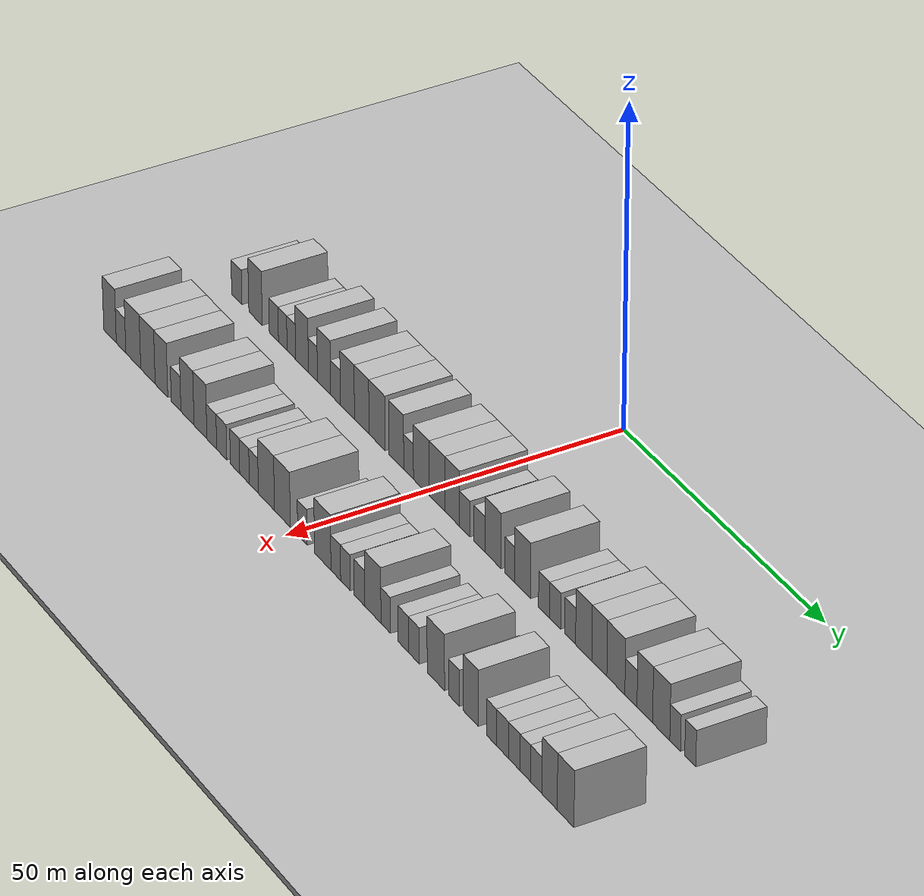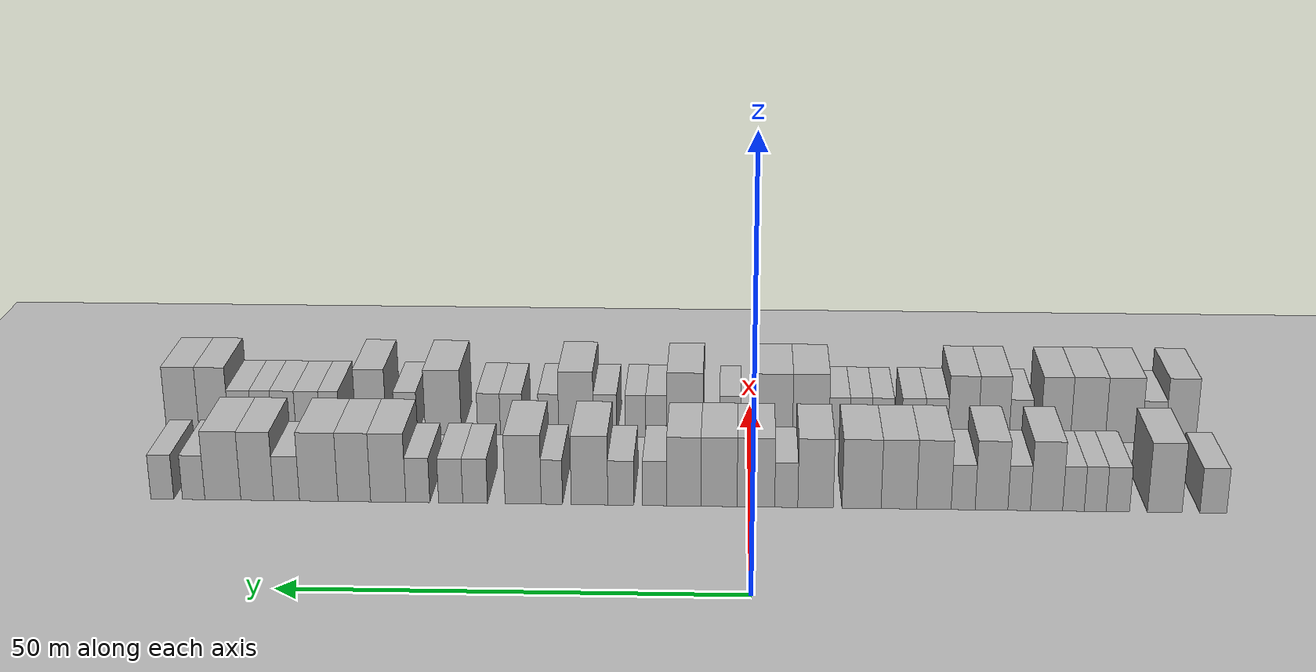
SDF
<sdf version="1.6">
 <world name="default">
  <include><name>ground_plane_1</name><uri>model://HANNAS_ground_plane</uri></include>
  <include>
   <name>ground_plane_2</name>
   <uri>model://HANNAS_ground_plane</uri>
   <pose>100 0 0  0 0 0</pose>
  </include>
  <model name="building_37">
   <static>1</static>
   <pose>25.0000 -52.0480 0 0.000000 0.000000 0.000000</pose>
   <link name="link">
    <pose>0 0 3.00 0 0 0</pose>
    <collision name="collision"><geometry><box><size>10.0000 2.9936 6.0000</size></box></geometry></collision>
    <visual name="visual">
     <cast_shadows>0</cast_shadows>
     <geometry><box><size>10.0000 2.9936 6.0000</size></box></geometry>
     <material>
      <script>
       <uri>model://HANNAS_wall/materials/scripts</uri>
       <uri>model://HANNAS_wall/materials/textures</uri>
       <name>vrc/HANNAS_wall</name>
      </script>
     </material>
    </visual>
   </link>
  </model>
  <model name="building_38">
   <static>1</static>
   <pose>25.0000 -46.6086 0 0.000000 0.000000 0.000000</pose>
   <link name="link">
    <pose>0 0 4.50 0 0 0</pose>
    <collision name="collision"><geometry><box><size>10.0000 3.8852 9.0000</size></box></geometry></collision>
    <visual name="visual">
     <cast_shadows>0</cast_shadows>
     <geometry><box><size>10.0000 3.8852 9.0000</size></box></geometry>
     <material>
      <script>
       <uri>model://HANNAS_wall/materials/scripts</uri>
       <uri>model://HANNAS_wall/materials/textures</uri>
       <name>vrc/HANNAS_wall</name>
      </script>
     </material>
    </visual>
   </link>
  </model>
  <model name="building_39">
   <static>1</static>
   <pose>25.0000 -41.3513 0 0.000000 0.000000 0.000000</pose>
   <link name="link">
    <pose>0 0 3.00 0 0 0</pose>
    <collision name="collision"><geometry><box><size>10.0000 2.6293 6.0000</size></box></geometry></collision>
    <visual name="visual">
     <cast_shadows>0</cast_shadows>
     <geometry><box><size>10.0000 2.6293 6.0000</size></box></geometry>
     <material>
      <script>
       <uri>model://HANNAS_wall/materials/scripts</uri>
       <uri>model://HANNAS_wall/materials/textures</uri>
       <name>vrc/HANNAS_wall</name>
      </script>
     </material>
    </visual>
   </link>
  </model>
  <model name="building_40">
   <static>1</static>
   <pose>25.0000 -38.8066 0 0.000000 0.000000 0.000000</pose>
   <link name="link">
    <pose>0 0 3.00 0 0 0</pose>
    <collision name="collision"><geometry><box><size>10.0000 2.4602 6.0000</size></box></geometry></collision>
    <visual name="visual">
     <cast_shadows>0</cast_shadows>
     <geometry><box><size>10.0000 2.4602 6.0000</size></box></geometry>
     <material>
      <script>
       <uri>model://HANNAS_wall/materials/scripts</uri>
       <uri>model://HANNAS_wall/materials/textures</uri>
       <name>vrc/HANNAS_wall</name>
      </script>
     </material>
    </visual>
   </link>
  </model>
  <model name="building_41">
   <static>1</static>
   <pose>25.0000 -36.3595 0 0.000000 0.000000 0.000000</pose>
   <link name="link">
    <pose>0 0 3.00 0 0 0</pose>
    <collision name="collision"><geometry><box><size>10.0000 2.4339 6.0000</size></box></geometry></collision>
    <visual name="visual">
     <cast_shadows>0</cast_shadows>
     <geometry><box><size>10.0000 2.4339 6.0000</size></box></geometry>
     <material>
      <script>
       <uri>model://HANNAS_wall/materials/scripts</uri>
       <uri>model://HANNAS_wall/materials/textures</uri>
       <name>vrc/HANNAS_wall</name>
      </script>
     </material>
    </visual>
   </link>
  </model>
  <model name="building_42">
   <static>1</static>
   <pose>25.0000 -33.3361 0 0.000000 0.000000 0.000000</pose>
   <link name="link">
    <pose>0 0 4.50 0 0 0</pose>
    <collision name="collision"><geometry><box><size>10.0000 3.6129 9.0000</size></box></geometry></collision>
    <visual name="visual">
     <cast_shadows>0</cast_shadows>
     <geometry><box><size>10.0000 3.6129 9.0000</size></box></geometry>
     <material>
      <script>
       <uri>model://HANNAS_wall/materials/scripts</uri>
       <uri>model://HANNAS_wall/materials/textures</uri>
       <name>vrc/HANNAS_wall</name>
      </script>
     </material>
    </visual>
   </link>
  </model>
  <model name="building_43">
   <static>1</static>
   <pose>25.0000 -30.2593 0 0.000000 0.000000 0.000000</pose>
   <link name="link">
    <pose>0 0 3.00 0 0 0</pose>
    <collision name="collision"><geometry><box><size>10.0000 2.5407 6.0000</size></box></geometry></collision>
    <visual name="visual">
     <cast_shadows>0</cast_shadows>
     <geometry><box><size>10.0000 2.5407 6.0000</size></box></geometry>
     <material>
      <script>
       <uri>model://HANNAS_wall/materials/scripts</uri>
       <uri>model://HANNAS_wall/materials/textures</uri>
       <name>vrc/HANNAS_wall</name>
      </script>
     </material>
    </visual>
   </link>
  </model>
  <model name="building_44">
   <static>1</static>
   <pose>25.0000 -27.1466 0 0.000000 0.000000 0.000000</pose>
   <link name="link">
    <pose>0 0 4.50 0 0 0</pose>
    <collision name="collision"><geometry><box><size>10.0000 3.6848 9.0000</size></box></geometry></collision>
    <visual name="visual">
     <cast_shadows>0</cast_shadows>
     <geometry><box><size>10.0000 3.6848 9.0000</size></box></geometry>
     <material>
      <script>
       <uri>model://HANNAS_wall/materials/scripts</uri>
       <uri>model://HANNAS_wall/materials/textures</uri>
       <name>vrc/HANNAS_wall</name>
      </script>
     </material>
    </visual>
   </link>
  </model>
  <model name="building_45">
   <static>1</static>
   <pose>25.0000 -23.9523 0 0.000000 0.000000 0.000000</pose>
   <link name="link">
    <pose>0 0 3.00 0 0 0</pose>
    <collision name="collision"><geometry><box><size>10.0000 2.7040 6.0000</size></box></geometry></collision>
    <visual name="visual">
     <cast_shadows>0</cast_shadows>
     <geometry><box><size>10.0000 2.7040 6.0000</size></box></geometry>
     <material>
      <script>
       <uri>model://HANNAS_wall/materials/scripts</uri>
       <uri>model://HANNAS_wall/materials/textures</uri>
       <name>vrc/HANNAS_wall</name>
      </script>
     </material>
    </visual>
   </link>
  </model>
  <model name="building_46">
   <static>1</static>
   <pose>25.0000 -20.6476 0 0.000000 0.000000 0.000000</pose>
   <link name="link">
    <pose>0 0 4.50 0 0 0</pose>
    <collision name="collision"><geometry><box><size>10.0000 3.9053 9.0000</size></box></geometry></collision>
    <visual name="visual">
     <cast_shadows>0</cast_shadows>
     <geometry><box><size>10.0000 3.9053 9.0000</size></box></geometry>
     <material>
      <script>
       <uri>model://HANNAS_wall/materials/scripts</uri>
       <uri>model://HANNAS_wall/materials/textures</uri>
       <name>vrc/HANNAS_wall</name>
      </script>
     </material>
    </visual>
   </link>
  </model>
  <model name="building_47">
   <static>1</static>
   <pose>25.0000 -16.6951 0 0.000000 0.000000 0.000000</pose>
   <link name="link">
    <pose>0 0 4.50 0 0 0</pose>
    <collision name="collision"><geometry><box><size>10.0000 3.9997 9.0000</size></box></geometry></collision>
    <visual name="visual">
     <cast_shadows>0</cast_shadows>
     <geometry><box><size>10.0000 3.9997 9.0000</size></box></geometry>
     <material>
      <script>
       <uri>model://HANNAS_wall/materials/scripts</uri>
       <uri>model://HANNAS_wall/materials/textures</uri>
       <name>vrc/HANNAS_wall</name>
      </script>
     </material>
    </visual>
   </link>
  </model>
  <model name="building_48">
   <static>1</static>
   <pose>25.0000 -12.4914 0 0.000000 0.000000 0.000000</pose>
   <link name="link">
    <pose>0 0 4.50 0 0 0</pose>
    <collision name="collision"><geometry><box><size>10.0000 4.4078 9.0000</size></box></geometry></collision>
    <visual name="visual">
     <cast_shadows>0</cast_shadows>
     <geometry><box><size>10.0000 4.4078 9.0000</size></box></geometry>
     <material>
      <script>
       <uri>model://HANNAS_wall/materials/scripts</uri>
       <uri>model://HANNAS_wall/materials/textures</uri>
       <name>vrc/HANNAS_wall</name>
      </script>
     </material>
    </visual>
   </link>
  </model>
  <model name="building_49">
   <static>1</static>
   <pose>25.0000 -7.2823 0 0.000000 0.000000 0.000000</pose>
   <link name="link">
    <pose>0 0 4.50 0 0 0</pose>
    <collision name="collision"><geometry><box><size>10.0000 4.0102 9.0000</size></box></geometry></collision>
    <visual name="visual">
     <cast_shadows>0</cast_shadows>
     <geometry><box><size>10.0000 4.0102 9.0000</size></box></geometry>
     <material>
      <script>
       <uri>model://HANNAS_wall/materials/scripts</uri>
       <uri>model://HANNAS_wall/materials/textures</uri>
       <name>vrc/HANNAS_wall</name>
      </script>
     </material>
    </visual>
   </link>
  </model>
  <model name="building_50">
   <static>1</static>
   <pose>25.0000 -3.9681 0 0.000000 0.000000 0.000000</pose>
   <link name="link">
    <pose>0 0 3.00 0 0 0</pose>
    <collision name="collision"><geometry><box><size>10.0000 2.6182 6.0000</size></box></geometry></collision>
    <visual name="visual">
     <cast_shadows>0</cast_shadows>
     <geometry><box><size>10.0000 2.6182 6.0000</size></box></geometry>
     <material>
      <script>
       <uri>model://HANNAS_wall/materials/scripts</uri>
       <uri>model://HANNAS_wall/materials/textures</uri>
       <name>vrc/HANNAS_wall</name>
      </script>
     </material>
    </visual>
   </link>
  </model>
  <model name="building_51">
   <static>1</static>
   <pose>25.0000 -0.5297 0 0.000000 0.000000 0.000000</pose>
   <link name="link">
    <pose>0 0 4.50 0 0 0</pose>
    <collision name="collision"><geometry><box><size>10.0000 4.2588 9.0000</size></box></geometry></collision>
    <visual name="visual">
     <cast_shadows>0</cast_shadows>
     <geometry><box><size>10.0000 4.2588 9.0000</size></box></geometry>
     <material>
      <script>
       <uri>model://HANNAS_wall/materials/scripts</uri>
       <uri>model://HANNAS_wall/materials/textures</uri>
       <name>vrc/HANNAS_wall</name>
      </script>
     </material>
    </visual>
   </link>
  </model>
  <model name="building_52">
   <static>1</static>
   <pose>25.0000 3.6588 0 0.000000 0.000000 0.000000</pose>
   <link name="link">
    <pose>0 0 4.50 0 0 0</pose>
    <collision name="collision"><geometry><box><size>10.0000 4.1181 9.0000</size></box></geometry></collision>
    <visual name="visual">
     <cast_shadows>0</cast_shadows>
     <geometry><box><size>10.0000 4.1181 9.0000</size></box></geometry>
     <material>
      <script>
       <uri>model://HANNAS_wall/materials/scripts</uri>
       <uri>model://HANNAS_wall/materials/textures</uri>
       <name>vrc/HANNAS_wall</name>
      </script>
     </material>
    </visual>
   </link>
  </model>
  <model name="building_53">
   <static>1</static>
   <pose>25.0000 7.6520 0 0.000000 0.000000 0.000000</pose>
   <link name="link">
    <pose>0 0 4.50 0 0 0</pose>
    <collision name="collision"><geometry><box><size>10.0000 3.8685 9.0000</size></box></geometry></collision>
    <visual name="visual">
     <cast_shadows>0</cast_shadows>
     <geometry><box><size>10.0000 3.8685 9.0000</size></box></geometry>
     <material>
      <script>
       <uri>model://HANNAS_wall/materials/scripts</uri>
       <uri>model://HANNAS_wall/materials/textures</uri>
       <name>vrc/HANNAS_wall</name>
      </script>
     </material>
    </visual>
   </link>
  </model>
  <model name="building_54">
   <static>1</static>
   <pose>25.0000 10.9541 0 0.000000 0.000000 0.000000</pose>
   <link name="link">
    <pose>0 0 3.00 0 0 0</pose>
    <collision name="collision"><geometry><box><size>10.0000 2.7357 6.0000</size></box></geometry></collision>
    <visual name="visual">
     <cast_shadows>0</cast_shadows>
     <geometry><box><size>10.0000 2.7357 6.0000</size></box></geometry>
     <material>
      <script>
       <uri>model://HANNAS_wall/materials/scripts</uri>
       <uri>model://HANNAS_wall/materials/textures</uri>
       <name>vrc/HANNAS_wall</name>
      </script>
     </material>
    </visual>
   </link>
  </model>
  <model name="building_55">
   <static>1</static>
   <pose>25.0000 14.8007 0 0.000000 0.000000 0.000000</pose>
   <link name="link">
    <pose>0 0 3.00 0 0 0</pose>
    <collision name="collision"><geometry><box><size>10.0000 2.9574 6.0000</size></box></geometry></collision>
    <visual name="visual">
     <cast_shadows>0</cast_shadows>
     <geometry><box><size>10.0000 2.9574 6.0000</size></box></geometry>
     <material>
      <script>
       <uri>model://HANNAS_wall/materials/scripts</uri>
       <uri>model://HANNAS_wall/materials/textures</uri>
       <name>vrc/HANNAS_wall</name>
      </script>
     </material>
    </visual>
   </link>
  </model>
  <model name="building_56">
   <static>1</static>
   <pose>25.0000 18.3590 0 0.000000 0.000000 0.000000</pose>
   <link name="link">
    <pose>0 0 4.50 0 0 0</pose>
    <collision name="collision"><geometry><box><size>10.0000 4.1594 9.0000</size></box></geometry></collision>
    <visual name="visual">
     <cast_shadows>0</cast_shadows>
     <geometry><box><size>10.0000 4.1594 9.0000</size></box></geometry>
     <material>
      <script>
       <uri>model://HANNAS_wall/materials/scripts</uri>
       <uri>model://HANNAS_wall/materials/textures</uri>
       <name>vrc/HANNAS_wall</name>
      </script>
     </material>
    </visual>
   </link>
  </model>
  <model name="building_57">
   <static>1</static>
   <pose>25.0000 22.6500 0 0.000000 0.000000 0.000000</pose>
   <link name="link">
    <pose>0 0 3.00 0 0 0</pose>
    <collision name="collision"><geometry><box><size>10.0000 2.4225 6.0000</size></box></geometry></collision>
    <visual name="visual">
     <cast_shadows>0</cast_shadows>
     <geometry><box><size>10.0000 2.4225 6.0000</size></box></geometry>
     <material>
      <script>
       <uri>model://HANNAS_wall/materials/scripts</uri>
       <uri>model://HANNAS_wall/materials/textures</uri>
       <name>vrc/HANNAS_wall</name>
      </script>
     </material>
    </visual>
   </link>
  </model>
  <model name="building_58">
   <static>1</static>
   <pose>25.0000 25.9257 0 0.000000 0.000000 0.000000</pose>
   <link name="link">
    <pose>0 0 4.50 0 0 0</pose>
    <collision name="collision"><geometry><box><size>10.0000 4.1289 9.0000</size></box></geometry></collision>
    <visual name="visual">
     <cast_shadows>0</cast_shadows>
     <geometry><box><size>10.0000 4.1289 9.0000</size></box></geometry>
     <material>
      <script>
       <uri>model://HANNAS_wall/materials/scripts</uri>
       <uri>model://HANNAS_wall/materials/textures</uri>
       <name>vrc/HANNAS_wall</name>
      </script>
     </material>
    </visual>
   </link>
  </model>
  <model name="building_59">
   <static>1</static>
   <pose>25.0000 31.4044 0 0.000000 0.000000 0.000000</pose>
   <link name="link">
    <pose>0 0 3.00 0 0 0</pose>
    <collision name="collision"><geometry><box><size>10.0000 2.8285 6.0000</size></box></geometry></collision>
    <visual name="visual">
     <cast_shadows>0</cast_shadows>
     <geometry><box><size>10.0000 2.8285 6.0000</size></box></geometry>
     <material>
      <script>
       <uri>model://HANNAS_wall/materials/scripts</uri>
       <uri>model://HANNAS_wall/materials/textures</uri>
       <name>vrc/HANNAS_wall</name>
      </script>
     </material>
    </visual>
   </link>
  </model>
  <model name="building_60">
   <static>1</static>
   <pose>25.0000 34.1987 0 0.000000 0.000000 0.000000</pose>
   <link name="link">
    <pose>0 0 3.00 0 0 0</pose>
    <collision name="collision"><geometry><box><size>10.0000 2.7600 6.0000</size></box></geometry></collision>
    <visual name="visual">
     <cast_shadows>0</cast_shadows>
     <geometry><box><size>10.0000 2.7600 6.0000</size></box></geometry>
     <material>
      <script>
       <uri>model://HANNAS_wall/materials/scripts</uri>
       <uri>model://HANNAS_wall/materials/textures</uri>
       <name>vrc/HANNAS_wall</name>
      </script>
     </material>
    </visual>
   </link>
  </model>
  <model name="building_61">
   <static>1</static>
   <pose>25.0000 37.9507 0 0.000000 0.000000 0.000000</pose>
   <link name="link">
    <pose>0 0 3.00 0 0 0</pose>
    <collision name="collision"><geometry><box><size>10.0000 2.7439 6.0000</size></box></geometry></collision>
    <visual name="visual">
     <cast_shadows>0</cast_shadows>
     <geometry><box><size>10.0000 2.7439 6.0000</size></box></geometry>
     <material>
      <script>
       <uri>model://HANNAS_wall/materials/scripts</uri>
       <uri>model://HANNAS_wall/materials/textures</uri>
       <name>vrc/HANNAS_wall</name>
      </script>
     </material>
    </visual>
   </link>
  </model>
  <model name="building_62">
   <static>1</static>
   <pose>25.0000 41.3345 0 0.000000 0.000000 0.000000</pose>
   <link name="link">
    <pose>0 0 4.50 0 0 0</pose>
    <collision name="collision"><geometry><box><size>10.0000 4.0237 9.0000</size></box></geometry></collision>
    <visual name="visual">
     <cast_shadows>0</cast_shadows>
     <geometry><box><size>10.0000 4.0237 9.0000</size></box></geometry>
     <material>
      <script>
       <uri>model://HANNAS_wall/materials/scripts</uri>
       <uri>model://HANNAS_wall/materials/textures</uri>
       <name>vrc/HANNAS_wall</name>
      </script>
     </material>
    </visual>
   </link>
  </model>
  <model name="building_63">
   <static>1</static>
   <pose>25.0000 45.2189 0 0.000000 0.000000 0.000000</pose>
   <link name="link">
    <pose>0 0 4.50 0 0 0</pose>
    <collision name="collision"><geometry><box><size>10.0000 3.7451 9.0000</size></box></geometry></collision>
    <visual name="visual">
     <cast_shadows>0</cast_shadows>
     <geometry><box><size>10.0000 3.7451 9.0000</size></box></geometry>
     <material>
      <script>
       <uri>model://HANNAS_wall/materials/scripts</uri>
       <uri>model://HANNAS_wall/materials/textures</uri>
       <name>vrc/HANNAS_wall</name>
      </script>
     </material>
    </visual>
   </link>
  </model>
  <model name="building_64">
   <static>1</static>
   <pose>25.0000 49.3038 0 0.000000 0.000000 0.000000</pose>
   <link name="link">
    <pose>0 0 4.50 0 0 0</pose>
    <collision name="collision"><geometry><box><size>10.0000 4.4248 9.0000</size></box></geometry></collision>
    <visual name="visual">
     <cast_shadows>0</cast_shadows>
     <geometry><box><size>10.0000 4.4248 9.0000</size></box></geometry>
     <material>
      <script>
       <uri>model://HANNAS_wall/materials/scripts</uri>
       <uri>model://HANNAS_wall/materials/textures</uri>
       <name>vrc/HANNAS_wall</name>
      </script>
     </material>
    </visual>
   </link>
  </model>
  <model name="building_65">
   <static>1</static>
   <pose>25.0000 52.9911 0 0.000000 0.000000 0.000000</pose>
   <link name="link">
    <pose>0 0 3.00 0 0 0</pose>
    <collision name="collision"><geometry><box><size>10.0000 2.9499 6.0000</size></box></geometry></collision>
    <visual name="visual">
     <cast_shadows>0</cast_shadows>
     <geometry><box><size>10.0000 2.9499 6.0000</size></box></geometry>
     <material>
      <script>
       <uri>model://HANNAS_wall/materials/scripts</uri>
       <uri>model://HANNAS_wall/materials/textures</uri>
       <name>vrc/HANNAS_wall</name>
      </script>
     </material>
    </visual>
   </link>
  </model>
  <model name="building_66">
   <static>1</static>
   <pose>25.0000 56.3589 0 0.000000 0.000000 0.000000</pose>
   <link name="link">
    <pose>0 0 4.50 0 0 0</pose>
    <collision name="collision"><geometry><box><size>10.0000 3.7856 9.0000</size></box></geometry></collision>
    <visual name="visual">
     <cast_shadows>0</cast_shadows>
     <geometry><box><size>10.0000 3.7856 9.0000</size></box></geometry>
     <material>
      <script>
       <uri>model://HANNAS_wall/materials/scripts</uri>
       <uri>model://HANNAS_wall/materials/textures</uri>
       <name>vrc/HANNAS_wall</name>
      </script>
     </material>
    </visual>
   </link>
  </model>
  <model name="building_67">
   <static>1</static>
   <pose>25.0000 60.3233 0 0.000000 0.000000 0.000000</pose>
   <link name="link">
    <pose>0 0 4.50 0 0 0</pose>
    <collision name="collision"><geometry><box><size>10.0000 4.1433 9.0000</size></box></geometry></collision>
    <visual name="visual">
     <cast_shadows>0</cast_shadows>
     <geometry><box><size>10.0000 4.1433 9.0000</size></box></geometry>
     <material>
      <script>
       <uri>model://HANNAS_wall/materials/scripts</uri>
       <uri>model://HANNAS_wall/materials/textures</uri>
       <name>vrc/HANNAS_wall</name>
      </script>
     </material>
    </visual>
   </link>
  </model>
  <model name="building_68">
   <static>1</static>
   <pose>25.0000 63.6815 0 0.000000 0.000000 0.000000</pose>
   <link name="link">
    <pose>0 0 3.00 0 0 0</pose>
    <collision name="collision"><geometry><box><size>10.0000 2.5730 6.0000</size></box></geometry></collision>
    <visual name="visual">
     <cast_shadows>0</cast_shadows>
     <geometry><box><size>10.0000 2.5730 6.0000</size></box></geometry>
     <material>
      <script>
       <uri>model://HANNAS_wall/materials/scripts</uri>
       <uri>model://HANNAS_wall/materials/textures</uri>
       <name>vrc/HANNAS_wall</name>
      </script>
     </material>
    </visual>
   </link>
  </model>
  <model name="building_69">
   <static>1</static>
   <pose>25.0000 67.2917 0 0.000000 0.000000 0.000000</pose>
   <link name="link">
    <pose>0 0 3.00 0 0 0</pose>
    <collision name="collision"><geometry><box><size>10.0000 2.6474 6.0000</size></box></geometry></collision>
    <visual name="visual">
     <cast_shadows>0</cast_shadows>
     <geometry><box><size>10.0000 2.6474 6.0000</size></box></geometry>
     <material>
      <script>
       <uri>model://HANNAS_wall/materials/scripts</uri>
       <uri>model://HANNAS_wall/materials/textures</uri>
       <name>vrc/HANNAS_wall</name>
      </script>
     </material>
    </visual>
   </link>
  </model>
  <model name="building_137">
   <static>1</static>
   <pose>44.0000 -52.1697 0 0.000000 0.000000 0.000000</pose>
   <link name="link">
    <pose>0 0 4.50 0 0 0</pose>
    <collision name="collision"><geometry><box><size>10.0000 3.7222 9.0000</size></box></geometry></collision>
    <visual name="visual">
     <cast_shadows>0</cast_shadows>
     <geometry><box><size>10.0000 3.7222 9.0000</size></box></geometry>
     <material>
      <script>
       <uri>model://HANNAS_wall/materials/scripts</uri>
       <uri>model://HANNAS_wall/materials/textures</uri>
       <name>vrc/HANNAS_wall</name>
      </script>
     </material>
    </visual>
   </link>
  </model>
  <model name="building_138">
   <static>1</static>
   <pose>44.0000 -48.8975 0 0.000000 0.000000 0.000000</pose>
   <link name="link">
    <pose>0 0 3.00 0 0 0</pose>
    <collision name="collision"><geometry><box><size>10.0000 2.8223 6.0000</size></box></geometry></collision>
    <visual name="visual">
     <cast_shadows>0</cast_shadows>
     <geometry><box><size>10.0000 2.8223 6.0000</size></box></geometry>
     <material>
      <script>
       <uri>model://HANNAS_wall/materials/scripts</uri>
       <uri>model://HANNAS_wall/materials/textures</uri>
       <name>vrc/HANNAS_wall</name>
      </script>
     </material>
    </visual>
   </link>
  </model>
  <model name="building_139">
   <static>1</static>
   <pose>44.0000 -45.2960 0 0.000000 0.000000 0.000000</pose>
   <link name="link">
    <pose>0 0 4.50 0 0 0</pose>
    <collision name="collision"><geometry><box><size>10.0000 4.3806 9.0000</size></box></geometry></collision>
    <visual name="visual">
     <cast_shadows>0</cast_shadows>
     <geometry><box><size>10.0000 4.3806 9.0000</size></box></geometry>
     <material>
      <script>
       <uri>model://HANNAS_wall/materials/scripts</uri>
       <uri>model://HANNAS_wall/materials/textures</uri>
       <name>vrc/HANNAS_wall</name>
      </script>
     </material>
    </visual>
   </link>
  </model>
  <model name="building_140">
   <static>1</static>
   <pose>44.0000 -40.9973 0 0.000000 0.000000 0.000000</pose>
   <link name="link">
    <pose>0 0 4.50 0 0 0</pose>
    <collision name="collision"><geometry><box><size>10.0000 4.2167 9.0000</size></box></geometry></collision>
    <visual name="visual">
     <cast_shadows>0</cast_shadows>
     <geometry><box><size>10.0000 4.2167 9.0000</size></box></geometry>
     <material>
      <script>
       <uri>model://HANNAS_wall/materials/scripts</uri>
       <uri>model://HANNAS_wall/materials/textures</uri>
       <name>vrc/HANNAS_wall</name>
      </script>
     </material>
    </visual>
   </link>
  </model>
  <model name="building_141">
   <static>1</static>
   <pose>44.0000 -37.0601 0 0.000000 0.000000 0.000000</pose>
   <link name="link">
    <pose>0 0 4.50 0 0 0</pose>
    <collision name="collision"><geometry><box><size>10.0000 3.6578 9.0000</size></box></geometry></collision>
    <visual name="visual">
     <cast_shadows>0</cast_shadows>
     <geometry><box><size>10.0000 3.6578 9.0000</size></box></geometry>
     <material>
      <script>
       <uri>model://HANNAS_wall/materials/scripts</uri>
       <uri>model://HANNAS_wall/materials/textures</uri>
       <name>vrc/HANNAS_wall</name>
      </script>
     </material>
    </visual>
   </link>
  </model>
  <model name="building_142">
   <static>1</static>
   <pose>44.0000 -32.8400 0 0.000000 0.000000 0.000000</pose>
   <link name="link">
    <pose>0 0 3.00 0 0 0</pose>
    <collision name="collision"><geometry><box><size>10.0000 2.7825 6.0000</size></box></geometry></collision>
    <visual name="visual">
     <cast_shadows>0</cast_shadows>
     <geometry><box><size>10.0000 2.7825 6.0000</size></box></geometry>
     <material>
      <script>
       <uri>model://HANNAS_wall/materials/scripts</uri>
       <uri>model://HANNAS_wall/materials/textures</uri>
       <name>vrc/HANNAS_wall</name>
      </script>
     </material>
    </visual>
   </link>
  </model>
  <model name="building_143">
   <static>1</static>
   <pose>44.0000 -29.5636 0 0.000000 0.000000 0.000000</pose>
   <link name="link">
    <pose>0 0 4.50 0 0 0</pose>
    <collision name="collision"><geometry><box><size>10.0000 3.7702 9.0000</size></box></geometry></collision>
    <visual name="visual">
     <cast_shadows>0</cast_shadows>
     <geometry><box><size>10.0000 3.7702 9.0000</size></box></geometry>
     <material>
      <script>
       <uri>model://HANNAS_wall/materials/scripts</uri>
       <uri>model://HANNAS_wall/materials/textures</uri>
       <name>vrc/HANNAS_wall</name>
      </script>
     </material>
    </visual>
   </link>
  </model>
  <model name="building_144">
   <static>1</static>
   <pose>44.0000 -25.8438 0 0.000000 0.000000 0.000000</pose>
   <link name="link">
    <pose>0 0 4.50 0 0 0</pose>
    <collision name="collision"><geometry><box><size>10.0000 3.6695 9.0000</size></box></geometry></collision>
    <visual name="visual">
     <cast_shadows>0</cast_shadows>
     <geometry><box><size>10.0000 3.6695 9.0000</size></box></geometry>
     <material>
      <script>
       <uri>model://HANNAS_wall/materials/scripts</uri>
       <uri>model://HANNAS_wall/materials/textures</uri>
       <name>vrc/HANNAS_wall</name>
      </script>
     </material>
    </visual>
   </link>
  </model>
  <model name="building_145">
   <static>1</static>
   <pose>44.0000 -22.6212 0 0.000000 0.000000 0.000000</pose>
   <link name="link">
    <pose>0 0 3.00 0 0 0</pose>
    <collision name="collision"><geometry><box><size>10.0000 2.7756 6.0000</size></box></geometry></collision>
    <visual name="visual">
     <cast_shadows>0</cast_shadows>
     <geometry><box><size>10.0000 2.7756 6.0000</size></box></geometry>
     <material>
      <script>
       <uri>model://HANNAS_wall/materials/scripts</uri>
       <uri>model://HANNAS_wall/materials/textures</uri>
       <name>vrc/HANNAS_wall</name>
      </script>
     </material>
    </visual>
   </link>
  </model>
  <model name="building_146">
   <static>1</static>
   <pose>44.0000 -19.8085 0 0.000000 0.000000 0.000000</pose>
   <link name="link">
    <pose>0 0 3.00 0 0 0</pose>
    <collision name="collision"><geometry><box><size>10.0000 2.8499 6.0000</size></box></geometry></collision>
    <visual name="visual">
     <cast_shadows>0</cast_shadows>
     <geometry><box><size>10.0000 2.8499 6.0000</size></box></geometry>
     <material>
      <script>
       <uri>model://HANNAS_wall/materials/scripts</uri>
       <uri>model://HANNAS_wall/materials/textures</uri>
       <name>vrc/HANNAS_wall</name>
      </script>
     </material>
    </visual>
   </link>
  </model>
  <model name="building_147">
   <static>1</static>
   <pose>44.0000 -16.0759 0 0.000000 0.000000 0.000000</pose>
   <link name="link">
    <pose>0 0 3.00 0 0 0</pose>
    <collision name="collision"><geometry><box><size>10.0000 2.6153 6.0000</size></box></geometry></collision>
    <visual name="visual">
     <cast_shadows>0</cast_shadows>
     <geometry><box><size>10.0000 2.6153 6.0000</size></box></geometry>
     <material>
      <script>
       <uri>model://HANNAS_wall/materials/scripts</uri>
       <uri>model://HANNAS_wall/materials/textures</uri>
       <name>vrc/HANNAS_wall</name>
      </script>
     </material>
    </visual>
   </link>
  </model>
  <model name="building_148">
   <static>1</static>
   <pose>44.0000 -13.4187 0 0.000000 0.000000 0.000000</pose>
   <link name="link">
    <pose>0 0 3.00 0 0 0</pose>
    <collision name="collision"><geometry><box><size>10.0000 2.6991 6.0000</size></box></geometry></collision>
    <visual name="visual">
     <cast_shadows>0</cast_shadows>
     <geometry><box><size>10.0000 2.6991 6.0000</size></box></geometry>
     <material>
      <script>
       <uri>model://HANNAS_wall/materials/scripts</uri>
       <uri>model://HANNAS_wall/materials/textures</uri>
       <name>vrc/HANNAS_wall</name>
      </script>
     </material>
    </visual>
   </link>
  </model>
  <model name="building_149">
   <static>1</static>
   <pose>44.0000 -10.8124 0 0.000000 0.000000 0.000000</pose>
   <link name="link">
    <pose>0 0 3.00 0 0 0</pose>
    <collision name="collision"><geometry><box><size>10.0000 2.5134 6.0000</size></box></geometry></collision>
    <visual name="visual">
     <cast_shadows>0</cast_shadows>
     <geometry><box><size>10.0000 2.5134 6.0000</size></box></geometry>
     <material>
      <script>
       <uri>model://HANNAS_wall/materials/scripts</uri>
       <uri>model://HANNAS_wall/materials/textures</uri>
       <name>vrc/HANNAS_wall</name>
      </script>
     </material>
    </visual>
   </link>
  </model>
  <model name="building_150">
   <static>1</static>
   <pose>44.0000 -7.3343 0 0.000000 0.000000 0.000000</pose>
   <link name="link">
    <pose>0 0 4.50 0 0 0</pose>
    <collision name="collision"><geometry><box><size>10.0000 4.4429 9.0000</size></box></geometry></collision>
    <visual name="visual">
     <cast_shadows>0</cast_shadows>
     <geometry><box><size>10.0000 4.4429 9.0000</size></box></geometry>
     <material>
      <script>
       <uri>model://HANNAS_wall/materials/scripts</uri>
       <uri>model://HANNAS_wall/materials/textures</uri>
       <name>vrc/HANNAS_wall</name>
      </script>
     </material>
    </visual>
   </link>
  </model>
  <model name="building_151">
   <static>1</static>
   <pose>44.0000 -2.9360 0 0.000000 0.000000 0.000000</pose>
   <link name="link">
    <pose>0 0 4.50 0 0 0</pose>
    <collision name="collision"><geometry><box><size>10.0000 4.3536 9.0000</size></box></geometry></collision>
    <visual name="visual">
     <cast_shadows>0</cast_shadows>
     <geometry><box><size>10.0000 4.3536 9.0000</size></box></geometry>
     <material>
      <script>
       <uri>model://HANNAS_wall/materials/scripts</uri>
       <uri>model://HANNAS_wall/materials/textures</uri>
       <name>vrc/HANNAS_wall</name>
      </script>
     </material>
    </visual>
   </link>
  </model>
  <model name="building_152">
   <static>1</static>
   <pose>44.0000 2.5306 0 0.000000 0.000000 0.000000</pose>
   <link name="link">
    <pose>0 0 3.00 0 0 0</pose>
    <collision name="collision"><geometry><box><size>10.0000 2.5796 6.0000</size></box></geometry></collision>
    <visual name="visual">
     <cast_shadows>0</cast_shadows>
     <geometry><box><size>10.0000 2.5796 6.0000</size></box></geometry>
     <material>
      <script>
       <uri>model://HANNAS_wall/materials/scripts</uri>
       <uri>model://HANNAS_wall/materials/textures</uri>
       <name>vrc/HANNAS_wall</name>
      </script>
     </material>
    </visual>
   </link>
  </model>
  <model name="building_153">
   <static>1</static>
   <pose>44.0000 8.0228 0 0.000000 0.000000 0.000000</pose>
   <link name="link">
    <pose>0 0 4.50 0 0 0</pose>
    <collision name="collision"><geometry><box><size>10.0000 4.4049 9.0000</size></box></geometry></collision>
    <visual name="visual">
     <cast_shadows>0</cast_shadows>
     <geometry><box><size>10.0000 4.4049 9.0000</size></box></geometry>
     <material>
      <script>
       <uri>model://HANNAS_wall/materials/scripts</uri>
       <uri>model://HANNAS_wall/materials/textures</uri>
       <name>vrc/HANNAS_wall</name>
      </script>
     </material>
    </visual>
   </link>
  </model>
  <model name="building_154">
   <static>1</static>
   <pose>44.0000 11.5204 0 0.000000 0.000000 0.000000</pose>
   <link name="link">
    <pose>0 0 3.00 0 0 0</pose>
    <collision name="collision"><geometry><box><size>10.0000 2.5901 6.0000</size></box></geometry></collision>
    <visual name="visual">
     <cast_shadows>0</cast_shadows>
     <geometry><box><size>10.0000 2.5901 6.0000</size></box></geometry>
     <material>
      <script>
       <uri>model://HANNAS_wall/materials/scripts</uri>
       <uri>model://HANNAS_wall/materials/textures</uri>
       <name>vrc/HANNAS_wall</name>
      </script>
     </material>
    </visual>
   </link>
  </model>
  <model name="building_155">
   <static>1</static>
   <pose>44.0000 14.0881 0 0.000000 0.000000 0.000000</pose>
   <link name="link">
    <pose>0 0 3.00 0 0 0</pose>
    <collision name="collision"><geometry><box><size>10.0000 2.5453 6.0000</size></box></geometry></collision>
    <visual name="visual">
     <cast_shadows>0</cast_shadows>
     <geometry><box><size>10.0000 2.5453 6.0000</size></box></geometry>
     <material>
      <script>
       <uri>model://HANNAS_wall/materials/scripts</uri>
       <uri>model://HANNAS_wall/materials/textures</uri>
       <name>vrc/HANNAS_wall</name>
      </script>
     </material>
    </visual>
   </link>
  </model>
  <model name="building_156">
   <static>1</static>
   <pose>44.0000 17.8029 0 0.000000 0.000000 0.000000</pose>
   <link name="link">
    <pose>0 0 3.00 0 0 0</pose>
    <collision name="collision"><geometry><box><size>10.0000 2.8844 6.0000</size></box></geometry></collision>
    <visual name="visual">
     <cast_shadows>0</cast_shadows>
     <geometry><box><size>10.0000 2.8844 6.0000</size></box></geometry>
     <material>
      <script>
       <uri>model://HANNAS_wall/materials/scripts</uri>
       <uri>model://HANNAS_wall/materials/textures</uri>
       <name>vrc/HANNAS_wall</name>
      </script>
     </material>
    </visual>
   </link>
  </model>
  <model name="building_157">
   <static>1</static>
   <pose>44.0000 21.3688 0 0.000000 0.000000 0.000000</pose>
   <link name="link">
    <pose>0 0 4.50 0 0 0</pose>
    <collision name="collision"><geometry><box><size>10.0000 4.2473 9.0000</size></box></geometry></collision>
    <visual name="visual">
     <cast_shadows>0</cast_shadows>
     <geometry><box><size>10.0000 4.2473 9.0000</size></box></geometry>
     <material>
      <script>
       <uri>model://HANNAS_wall/materials/scripts</uri>
       <uri>model://HANNAS_wall/materials/textures</uri>
       <name>vrc/HANNAS_wall</name>
      </script>
     </material>
    </visual>
   </link>
  </model>
  <model name="building_158">
   <static>1</static>
   <pose>44.0000 24.7327 0 0.000000 0.000000 0.000000</pose>
   <link name="link">
    <pose>0 0 3.00 0 0 0</pose>
    <collision name="collision"><geometry><box><size>10.0000 2.4806 6.0000</size></box></geometry></collision>
    <visual name="visual">
     <cast_shadows>0</cast_shadows>
     <geometry><box><size>10.0000 2.4806 6.0000</size></box></geometry>
     <material>
      <script>
       <uri>model://HANNAS_wall/materials/scripts</uri>
       <uri>model://HANNAS_wall/materials/textures</uri>
       <name>vrc/HANNAS_wall</name>
      </script>
     </material>
    </visual>
   </link>
  </model>
  <model name="building_159">
   <static>1</static>
   <pose>44.0000 29.3204 0 0.000000 0.000000 0.000000</pose>
   <link name="link">
    <pose>0 0 3.00 0 0 0</pose>
    <collision name="collision"><geometry><box><size>10.0000 2.6949 6.0000</size></box></geometry></collision>
    <visual name="visual">
     <cast_shadows>0</cast_shadows>
     <geometry><box><size>10.0000 2.6949 6.0000</size></box></geometry>
     <material>
      <script>
       <uri>model://HANNAS_wall/materials/scripts</uri>
       <uri>model://HANNAS_wall/materials/textures</uri>
       <name>vrc/HANNAS_wall</name>
      </script>
     </material>
    </visual>
   </link>
  </model>
  <model name="building_160">
   <static>1</static>
   <pose>44.0000 32.0682 0 0.000000 0.000000 0.000000</pose>
   <link name="link">
    <pose>0 0 3.00 0 0 0</pose>
    <collision name="collision"><geometry><box><size>10.0000 2.8008 6.0000</size></box></geometry></collision>
    <visual name="visual">
     <cast_shadows>0</cast_shadows>
     <geometry><box><size>10.0000 2.8008 6.0000</size></box></geometry>
     <material>
      <script>
       <uri>model://HANNAS_wall/materials/scripts</uri>
       <uri>model://HANNAS_wall/materials/textures</uri>
       <name>vrc/HANNAS_wall</name>
      </script>
     </material>
    </visual>
   </link>
  </model>
  <model name="building_161">
   <static>1</static>
   <pose>44.0000 37.6922 0 0.000000 0.000000 0.000000</pose>
   <link name="link">
    <pose>0 0 4.50 0 0 0</pose>
    <collision name="collision"><geometry><box><size>10.0000 4.4472 9.0000</size></box></geometry></collision>
    <visual name="visual">
     <cast_shadows>0</cast_shadows>
     <geometry><box><size>10.0000 4.4472 9.0000</size></box></geometry>
     <material>
      <script>
       <uri>model://HANNAS_wall/materials/scripts</uri>
       <uri>model://HANNAS_wall/materials/textures</uri>
       <name>vrc/HANNAS_wall</name>
      </script>
     </material>
    </visual>
   </link>
  </model>
  <model name="building_162">
   <static>1</static>
   <pose>44.0000 42.3064 0 0.000000 0.000000 0.000000</pose>
   <link name="link">
    <pose>0 0 3.00 0 0 0</pose>
    <collision name="collision"><geometry><box><size>10.0000 2.7812 6.0000</size></box></geometry></collision>
    <visual name="visual">
     <cast_shadows>0</cast_shadows>
     <geometry><box><size>10.0000 2.7812 6.0000</size></box></geometry>
     <material>
      <script>
       <uri>model://HANNAS_wall/materials/scripts</uri>
       <uri>model://HANNAS_wall/materials/textures</uri>
       <name>vrc/HANNAS_wall</name>
      </script>
     </material>
    </visual>
   </link>
  </model>
  <model name="building_163">
   <static>1</static>
   <pose>44.0000 46.5816 0 0.000000 0.000000 0.000000</pose>
   <link name="link">
    <pose>0 0 4.50 0 0 0</pose>
    <collision name="collision"><geometry><box><size>10.0000 3.7690 9.0000</size></box></geometry></collision>
    <visual name="visual">
     <cast_shadows>0</cast_shadows>
     <geometry><box><size>10.0000 3.7690 9.0000</size></box></geometry>
     <material>
      <script>
       <uri>model://HANNAS_wall/materials/scripts</uri>
       <uri>model://HANNAS_wall/materials/textures</uri>
       <name>vrc/HANNAS_wall</name>
      </script>
     </material>
    </visual>
   </link>
  </model>
  <model name="building_164">
   <static>1</static>
   <pose>44.0000 51.6932 0 0.000000 0.000000 0.000000</pose>
   <link name="link">
    <pose>0 0 3.00 0 0 0</pose>
    <collision name="collision"><geometry><box><size>10.0000 2.4542 6.0000</size></box></geometry></collision>
    <visual name="visual">
     <cast_shadows>0</cast_shadows>
     <geometry><box><size>10.0000 2.4542 6.0000</size></box></geometry>
     <material>
      <script>
       <uri>model://HANNAS_wall/materials/scripts</uri>
       <uri>model://HANNAS_wall/materials/textures</uri>
       <name>vrc/HANNAS_wall</name>
      </script>
     </material>
    </visual>
   </link>
  </model>
  <model name="building_165">
   <static>1</static>
   <pose>44.0000 54.4148 0 0.000000 0.000000 0.000000</pose>
   <link name="link">
    <pose>0 0 3.00 0 0 0</pose>
    <collision name="collision"><geometry><box><size>10.0000 2.9892 6.0000</size></box></geometry></collision>
    <visual name="visual">
     <cast_shadows>0</cast_shadows>
     <geometry><box><size>10.0000 2.9892 6.0000</size></box></geometry>
     <material>
      <script>
       <uri>model://HANNAS_wall/materials/scripts</uri>
       <uri>model://HANNAS_wall/materials/textures</uri>
       <name>vrc/HANNAS_wall</name>
      </script>
     </material>
    </visual>
   </link>
  </model>
  <model name="building_166">
   <static>1</static>
   <pose>44.0000 57.3825 0 0.000000 0.000000 0.000000</pose>
   <link name="link">
    <pose>0 0 3.00 0 0 0</pose>
    <collision name="collision"><geometry><box><size>10.0000 2.9462 6.0000</size></box></geometry></collision>
    <visual name="visual">
     <cast_shadows>0</cast_shadows>
     <geometry><box><size>10.0000 2.9462 6.0000</size></box></geometry>
     <material>
      <script>
       <uri>model://HANNAS_wall/materials/scripts</uri>
       <uri>model://HANNAS_wall/materials/textures</uri>
       <name>vrc/HANNAS_wall</name>
      </script>
     </material>
    </visual>
   </link>
  </model>
  <model name="building_167">
   <static>1</static>
   <pose>44.0000 60.1119 0 0.000000 0.000000 0.000000</pose>
   <link name="link">
    <pose>0 0 3.00 0 0 0</pose>
    <collision name="collision"><geometry><box><size>10.0000 2.5124 6.0000</size></box></geometry></collision>
    <visual name="visual">
     <cast_shadows>0</cast_shadows>
     <geometry><box><size>10.0000 2.5124 6.0000</size></box></geometry>
     <material>
      <script>
       <uri>model://HANNAS_wall/materials/scripts</uri>
       <uri>model://HANNAS_wall/materials/textures</uri>
       <name>vrc/HANNAS_wall</name>
      </script>
     </material>
    </visual>
   </link>
  </model>
  <model name="building_168">
   <static>1</static>
   <pose>44.0000 62.7855 0 0.000000 0.000000 0.000000</pose>
   <link name="link">
    <pose>0 0 3.00 0 0 0</pose>
    <collision name="collision"><geometry><box><size>10.0000 2.8349 6.0000</size></box></geometry></collision>
    <visual name="visual">
     <cast_shadows>0</cast_shadows>
     <geometry><box><size>10.0000 2.8349 6.0000</size></box></geometry>
     <material>
      <script>
       <uri>model://HANNAS_wall/materials/scripts</uri>
       <uri>model://HANNAS_wall/materials/textures</uri>
       <name>vrc/HANNAS_wall</name>
      </script>
     </material>
    </visual>
   </link>
  </model>
  <model name="building_169">
   <static>1</static>
   <pose>44.0000 66.0563 0 0.000000 0.000000 0.000000</pose>
   <link name="link">
    <pose>0 0 4.50 0 0 0</pose>
    <collision name="collision"><geometry><box><size>10.0000 3.7067 9.0000</size></box></geometry></collision>
    <visual name="visual">
     <cast_shadows>0</cast_shadows>
     <geometry><box><size>10.0000 3.7067 9.0000</size></box></geometry>
     <material>
      <script>
       <uri>model://HANNAS_wall/materials/scripts</uri>
       <uri>model://HANNAS_wall/materials/textures</uri>
       <name>vrc/HANNAS_wall</name>
      </script>
     </material>
    </visual>
   </link>
  </model>
  <model name="building_170">
   <static>1</static>
   <pose>44.0000 69.9287 0 0.000000 0.000000 0.000000</pose>
   <link name="link">
    <pose>0 0 4.50 0 0 0</pose>
    <collision name="collision"><geometry><box><size>10.0000 4.0381 9.0000</size></box></geometry></collision>
    <visual name="visual">
     <cast_shadows>0</cast_shadows>
     <geometry><box><size>10.0000 4.0381 9.0000</size></box></geometry>
     <material>
      <script>
       <uri>model://HANNAS_wall/materials/scripts</uri>
       <uri>model://HANNAS_wall/materials/textures</uri>
       <name>vrc/HANNAS_wall</name>
      </script>
     </material>
    </visual>
   </link>
  </model>
 </world>
</sdf>
